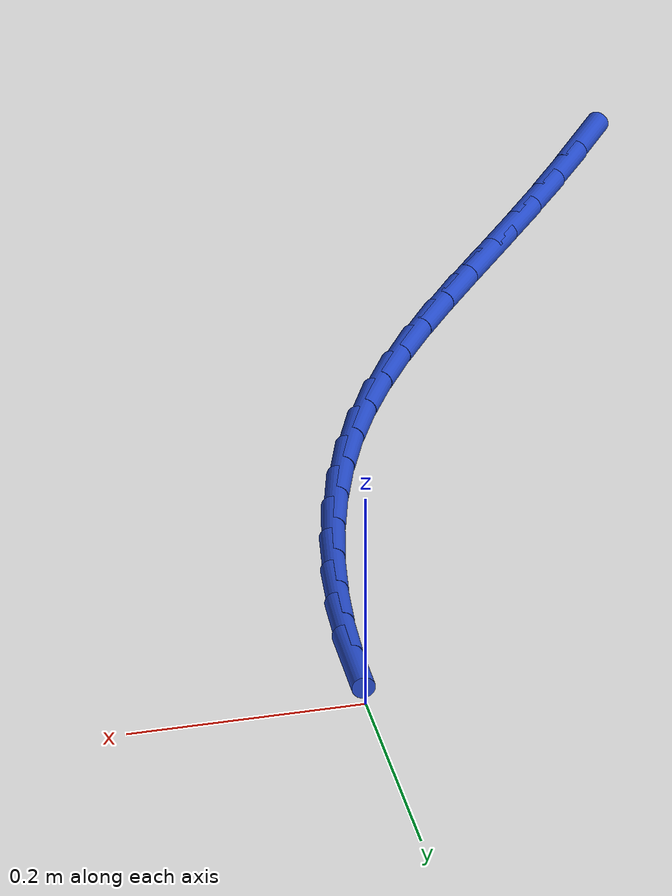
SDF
<sdf version="1.6">
 <world name="default">
  <model name="ground_plane">
   <static>1</static>
   <link name="link">
    <collision name="collision">
     <geometry><plane><normal>0 0 1</normal><size>100 100</size></plane></geometry>
     <surface><friction><ode><mu>100</mu><mu2>50</mu2></ode></friction></surface>
    </collision>
    <visual name="visual">
     <cast_shadows>0</cast_shadows>
     <geometry><plane><normal>0 0 1</normal><size>100 100</size></plane></geometry>
     <material>
      <script><uri>file://media/materials/scripts/gazebo.material</uri><name>Gazebo/WhiteGlow</name></script>
     </material>
    </visual>
   </link>
  </model>
  <model name="line">
   <link name="link_131">
    <pose>-0.3804800672631147 -0.8114119840221262 0.01 0 1.57 0.9478143797437214</pose>
    <collision name="collision">
     <geometry><cylinder><radius>0.01</radius><length>0.08</length></cylinder></geometry>
    </collision>
    <visual name="visual">
     <material>
      <script><name>Gazebo/Blue</name><uri>file://media/materials/scripts/gazebo.material</uri></script>
     </material>
     <geometry><cylinder><radius>0.01</radius><length>0.08</length></cylinder></geometry>
    </visual>
   </link>
   <link name="link_132">
    <pose>-0.34928401298216516 -0.7679888634392177 0.01 0 1.57 0.9280236456316832</pose>
    <collision name="collision">
     <geometry><cylinder><radius>0.01</radius><length>0.08</length></cylinder></geometry>
    </collision>
    <visual name="visual">
     <material>
      <script><name>Gazebo/Blue</name><uri>file://media/materials/scripts/gazebo.material</uri></script>
     </material>
     <geometry><cylinder><radius>0.01</radius><length>0.08</length></cylinder></geometry>
    </visual>
   </link>
   <link name="link_133">
    <pose>-0.31797954478509355 -0.726186169142279 0.01 0 1.57 0.9065702392356935</pose>
    <collision name="collision">
     <geometry><cylinder><radius>0.01</radius><length>0.08</length></cylinder></geometry>
    </collision>
    <visual name="visual">
     <material>
      <script><name>Gazebo/Blue</name><uri>file://media/materials/scripts/gazebo.material</uri></script>
     </material>
     <geometry><cylinder><radius>0.01</radius><length>0.08</length></cylinder></geometry>
    </visual>
   </link>
   <link name="link_134">
    <pose>-0.28664044853711484 -0.6861566100083961 0.01 0 1.57 0.8939573134769724</pose>
    <collision name="collision">
     <geometry><cylinder><radius>0.01</radius><length>0.08</length></cylinder></geometry>
    </collision>
    <visual name="visual">
     <material>
      <script><name>Gazebo/Blue</name><uri>file://media/materials/scripts/gazebo.material</uri></script>
     </material>
     <geometry><cylinder><radius>0.01</radius><length>0.08</length></cylinder></geometry>
    </visual>
   </link>
   <link name="link_135">
    <pose>-0.25557109398591865 -0.6474865185299948 0.01 0 1.57 0.8916767235750881</pose>
    <collision name="collision">
     <geometry><cylinder><radius>0.01</radius><length>0.08</length></cylinder></geometry>
    </collision>
    <visual name="visual">
     <material>
      <script><name>Gazebo/Blue</name><uri>file://media/materials/scripts/gazebo.material</uri></script>
     </material>
     <geometry><cylinder><radius>0.01</radius><length>0.08</length></cylinder></geometry>
    </visual>
   </link>
   <link name="link_136">
    <pose>-0.22509058836101561 -0.6097260279578861 0.01 0 1.57 0.9004526816442324</pose>
    <collision name="collision">
     <geometry><cylinder><radius>0.01</radius><length>0.08</length></cylinder></geometry>
    </collision>
    <visual name="visual">
     <material>
      <script><name>Gazebo/Blue</name><uri>file://media/materials/scripts/gazebo.material</uri></script>
     </material>
     <geometry><cylinder><radius>0.01</radius><length>0.08</length></cylinder></geometry>
    </visual>
   </link>
   <link name="link_137">
    <pose>-0.19551803889191788 -0.5724252715428827 0.01 0 1.57 0.9208509125839254</pose>
    <collision name="collision">
     <geometry><cylinder><radius>0.01</radius><length>0.08</length></cylinder></geometry>
    </collision>
    <visual name="visual">
     <material>
      <script><name>Gazebo/Blue</name><uri>file://media/materials/scripts/gazebo.material</uri></script>
     </material>
     <geometry><cylinder><radius>0.01</radius><length>0.08</length></cylinder></geometry>
    </visual>
   </link>
   <link name="link_138">
    <pose>-0.16717255280813773 -0.5351343825357975 0.01 0 1.57 0.9532074710930224</pose>
    <collision name="collision">
     <geometry><cylinder><radius>0.01</radius><length>0.08</length></cylinder></geometry>
    </collision>
    <visual name="visual">
     <material>
      <script><name>Gazebo/Blue</name><uri>file://media/materials/scripts/gazebo.material</uri></script>
     </material>
     <geometry><cylinder><radius>0.01</radius><length>0.08</length></cylinder></geometry>
    </visual>
   </link>
   <link name="link_139">
    <pose>-0.1403732373391858 -0.49740349418744156 0.01 0 1.57 0.9975117276995416</pose>
    <collision name="collision">
     <geometry><cylinder><radius>0.01</radius><length>0.08</length></cylinder></geometry>
    </collision>
    <visual name="visual">
     <material>
      <script><name>Gazebo/Blue</name><uri>file://media/materials/scripts/gazebo.material</uri></script>
     </material>
     <geometry><cylinder><radius>0.01</radius><length>0.08</length></cylinder></geometry>
    </visual>
   </link>
   <link name="link_140">
    <pose>-0.11543919971457473 -0.4587827397486282 0.01 0 1.57 1.0532535183012184</pose>
    <collision name="collision">
     <geometry><cylinder><radius>0.01</radius><length>0.08</length></cylinder></geometry>
    </collision>
    <visual name="visual">
     <material>
      <script><name>Gazebo/Blue</name><uri>file://media/materials/scripts/gazebo.material</uri></script>
     </material>
     <geometry><cylinder><radius>0.01</radius><length>0.08</length></cylinder></geometry>
    </visual>
   </link>
   <link name="link_141">
    <pose>-0.09268954716381535 -0.4188222524701685 0.01 0 1.57 1.1184923816227383</pose>
    <collision name="collision">
     <geometry><cylinder><radius>0.01</radius><length>0.08</length></cylinder></geometry>
    </collision>
    <visual name="visual">
     <material>
      <script><name>Gazebo/Blue</name><uri>file://media/materials/scripts/gazebo.material</uri></script>
     </material>
     <geometry><cylinder><radius>0.01</radius><length>0.08</length></cylinder></geometry>
    </visual>
   </link>
   <link name="link_142">
    <pose>-0.07242267928621222 -0.37711227786573925 0.01 0 1.57 1.1841546288890892</pose>
    <collision name="collision">
     <geometry><cylinder><radius>0.01</radius><length>0.08</length></cylinder></geometry>
    </collision>
    <visual name="visual">
     <material>
      <script><name>Gazebo/Blue</name><uri>file://media/materials/scripts/gazebo.material</uri></script>
     </material>
     <geometry><cylinder><radius>0.01</radius><length>0.08</length></cylinder></geometry>
    </visual>
   </link>
   <link name="link_143">
    <pose>-0.05472734548340092 -0.3336491699101985 0.01 0 1.57 1.2458031647885144</pose>
    <collision name="collision">
     <geometry><cylinder><radius>0.01</radius><length>0.08</length></cylinder></geometry>
    </collision>
    <visual name="visual">
     <material>
      <script><name>Gazebo/Blue</name><uri>file://media/materials/scripts/gazebo.material</uri></script>
     </material>
     <geometry><cylinder><radius>0.01</radius><length>0.08</length></cylinder></geometry>
    </visual>
   </link>
   <link name="link_144">
    <pose>-0.03957046572355077 -0.28866527550519894 0.01 0 1.57 1.3038588968209512</pose>
    <collision name="collision">
     <geometry><cylinder><radius>0.01</radius><length>0.08</length></cylinder></geometry>
    </collision>
    <visual name="visual">
     <material>
      <script><name>Gazebo/Blue</name><uri>file://media/materials/scripts/gazebo.material</uri></script>
     </material>
     <geometry><cylinder><radius>0.01</radius><length>0.08</length></cylinder></geometry>
    </visual>
   </link>
   <link name="link_145">
    <pose>-0.026917455684043686 -0.24239585547866016 0.01 0 1.57 1.3588183374539728</pose>
    <collision name="collision">
     <geometry><cylinder><radius>0.01</radius><length>0.08</length></cylinder></geometry>
    </collision>
    <visual name="visual">
     <material>
      <script><name>Gazebo/Blue</name><uri>file://media/materials/scripts/gazebo.material</uri></script>
     </material>
     <geometry><cylinder><radius>0.01</radius><length>0.08</length></cylinder></geometry>
    </visual>
   </link>
   <link name="link_146">
    <pose>-0.01673373104226068 -0.1950761706584988 0.01 0 1.57 1.4111795700109457</pose>
    <collision name="collision">
     <geometry><cylinder><radius>0.01</radius><length>0.08</length></cylinder></geometry>
    </collision>
    <visual name="visual">
     <material>
      <script><name>Gazebo/Blue</name><uri>file://media/materials/scripts/gazebo.material</uri></script>
     </material>
     <geometry><cylinder><radius>0.01</radius><length>0.08</length></cylinder></geometry>
    </visual>
   </link>
   <link name="link_147">
    <pose>-0.00898470747558339 -0.14694148187263387 0.01 0 1.57 1.4614331518507655</pose>
    <collision name="collision">
     <geometry><cylinder><radius>0.01</radius><length>0.08</length></cylinder></geometry>
    </collision>
    <visual name="visual">
     <material>
      <script><name>Gazebo/Blue</name><uri>file://media/materials/scripts/gazebo.material</uri></script>
     </material>
     <geometry><cylinder><radius>0.01</radius><length>0.08</length></cylinder></geometry>
    </visual>
   </link>
   <link name="link_148">
    <pose>-0.0036358006613933 -0.09822704994898412 0.01 0 1.57 1.5100590488616488</pose>
    <collision name="collision">
     <geometry><cylinder><radius>0.01</radius><length>0.08</length></cylinder></geometry>
    </collision>
    <visual name="visual">
     <material>
      <script><name>Gazebo/Blue</name><uri>file://media/materials/scripts/gazebo.material</uri></script>
     </material>
     <geometry><cylinder><radius>0.01</radius><length>0.08</length></cylinder></geometry>
    </visual>
   </link>
   <link name="link_149">
    <pose>-0.0006524262770716618 -0.04916813571546627 0.01 0 1.57 1.5575278149865925</pose>
    <collision name="collision">
     <geometry><cylinder><radius>0.01</radius><length>0.08</length></cylinder></geometry>
    </collision>
    <visual name="visual">
     <material>
      <script><name>Gazebo/Blue</name><uri>file://media/materials/scripts/gazebo.material</uri></script>
     </material>
     <geometry><cylinder><radius>0.01</radius><length>0.08</length></cylinder></geometry>
    </visual>
   </link>
  </model>
 </world>
</sdf>
